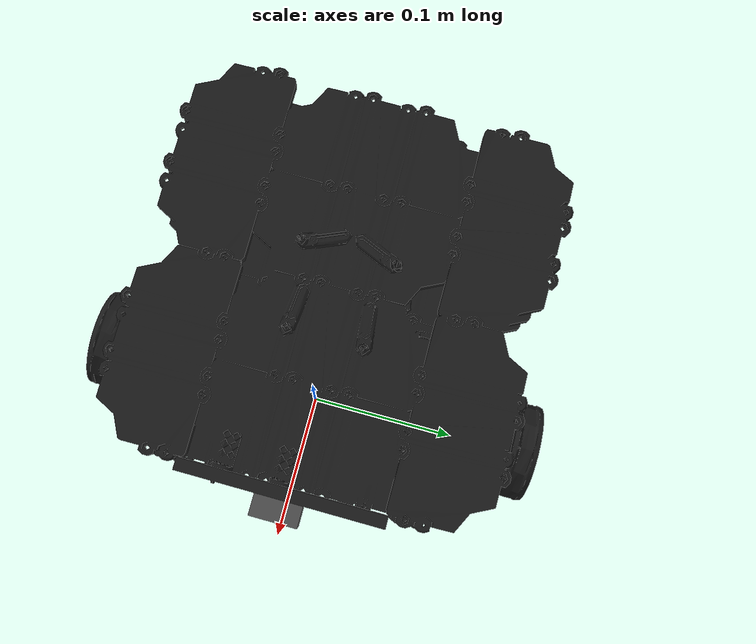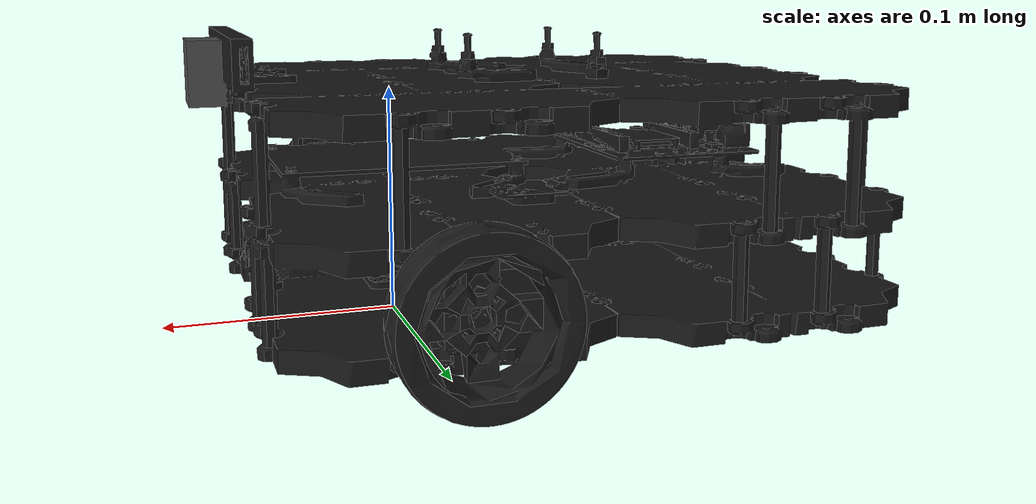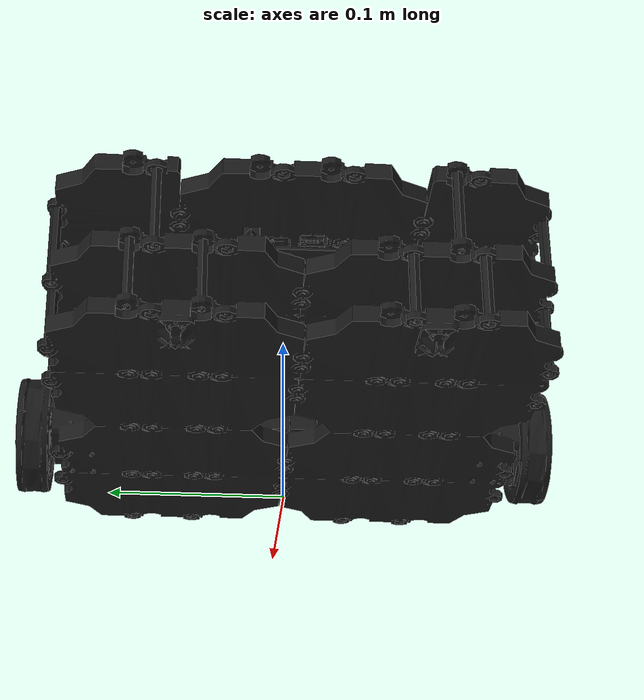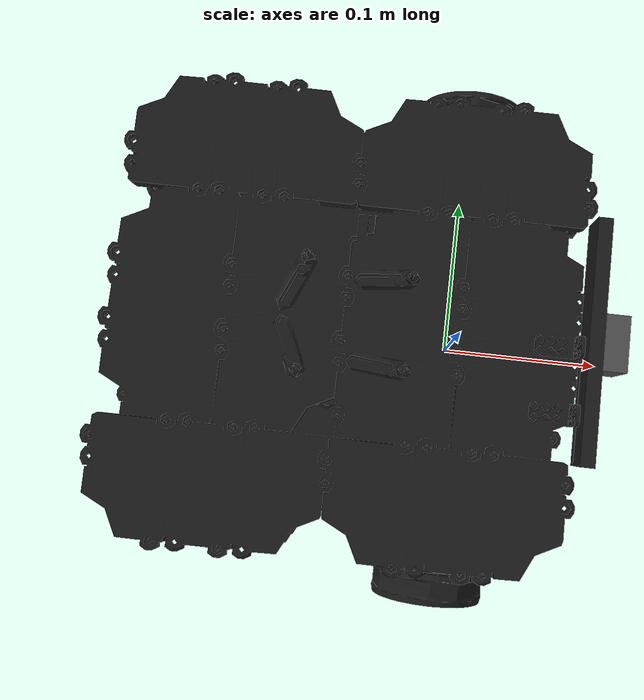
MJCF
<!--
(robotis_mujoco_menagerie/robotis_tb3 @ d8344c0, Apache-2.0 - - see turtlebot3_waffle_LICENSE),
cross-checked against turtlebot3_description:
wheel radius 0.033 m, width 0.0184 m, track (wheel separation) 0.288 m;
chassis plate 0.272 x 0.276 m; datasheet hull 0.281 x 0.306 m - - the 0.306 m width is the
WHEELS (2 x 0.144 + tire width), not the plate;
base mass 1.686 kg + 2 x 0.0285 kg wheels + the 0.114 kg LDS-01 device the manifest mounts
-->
<mujoco model="turtlebot3_waffle">

  <compiler meshdir="meshes"/>

  <asset>
    <material name="tb3_black" rgba="0.1 0.1 0.1 1"/>
    <material name="tb3_grey"  rgba="0.3 0.3 0.3 1"/>

    <mesh name="tb3_waffle_base" file="waffle_base.obj"/>
    <mesh name="tb3_left_tire"   file="left_tire.obj"/>
    <mesh name="tb3_right_tire"  file="right_tire.obj"/>
  </asset>

  <default>
    <default class="tb3_wheel">
      <!-- Contact cylinder at the tire's measured radius/width, axle along the wheel body's +y
           (the hinge axis), which is what the quat rotates the cylinder's local +z onto. -->
      <geom type="cylinder" size="0.033 0.0092" quat="0.707107 0.707107 0 0"
            material="tb3_black" friction="1.5 0.005 0.0001" group="3"/>
    </default>
    <default class="tb3_visual">
      <geom type="mesh" contype="0" conaffinity="0" group="2"/>
    </default>
  </default>

  <worldbody>
    <body name="base_link" pos="0 0 0.012">
      <freejoint name="base_free"/>
      <site name="base_imu" pos="0 0 0.05" size="0.01" rgba="0 0 0 0"/>

      <!-- Spectator camera that follows the robot (constant world-frame offset, level horizon). -->
      <camera name="track" mode="track" pos="-1.0 -1.0 0.8"
              xyaxes="0.7 -0.7 0 0.3 0.3 0.9"/>

      <geom name="tb3_body_collision" type="box" size="0.136 0.138 0.050"
            pos="-0.0616 0 0.055" material="tb3_grey" group="3" friction="0.4 0.005 0.0001"/>
      <inertial pos="-0.064 0 0.0451" mass="1.686" diaginertia="0.01 0.01 0.008"/>

      <!-- Visual meshes at the URDF link transforms relative to base_link. -->
      <geom class="tb3_visual" mesh="tb3_waffle_base" material="tb3_black" pos="-0.064 0 0"/>
      <!-- Front sensor/camera mount (vendor's small box; visual only here). -->
      <geom class="tb3_visual" type="box" size="0.0075 0.015 0.0135" pos="0.078 0 0.097"
            material="tb3_grey"/>

      <!-- The LDS-01 is not part of this model: turtlebot3_waffle.manifest.yaml mounts the `lds01`
           device model at turtlebot3_description's base_link -> base_scan joint. -->

      <body name="left_wheel" pos="0 0.144 0.023">
        <joint name="left_wheel_joint" type="hinge" axis="0 1 0" frictionloss="0.1" armature="0.01"/>
        <inertial pos="0 0 0" mass="0.0285" diaginertia="2.07126e-05 1.11924e-05 1.11756e-05"/>
        <geom name="left_wheel_geom" class="tb3_wheel"/>
        <geom class="tb3_visual" mesh="tb3_left_tire" material="tb3_black"/>
      </body>
      <body name="right_wheel" pos="0 -0.144 0.023">
        <joint name="right_wheel_joint" type="hinge" axis="0 1 0" frictionloss="0.1" armature="0.01"/>
        <inertial pos="0 0 0" mass="0.0285" diaginertia="2.07126e-05 1.11924e-05 1.11756e-05"/>
        <geom name="right_wheel_geom" class="tb3_wheel"/>
        <geom class="tb3_visual" mesh="tb3_right_tire" material="tb3_black"/>
      </body>

      <geom name="tb3_caster_left" type="sphere" size="0.005" pos="-0.177 0.064 -0.005"
            material="tb3_grey" priority="1" condim="1" friction="0.0001 0.0001 0.0001"
            solref="0.02 1" solimp="0.95 0.99 0.001" group="3"/>
      <geom name="tb3_caster_right" type="sphere" size="0.005" pos="-0.177 -0.064 -0.005"
            material="tb3_grey" priority="1" condim="1" friction="0.0001 0.0001 0.0001"
            solref="0.02 1" solimp="0.95 0.99 0.001" group="3"/>
    </body>
  </worldbody>

  <contact>
    <exclude body1="base_link" body2="left_wheel"/>
    <exclude body1="base_link" body2="right_wheel"/>
  </contact>

  <actuator>
    <velocity name="left_wheel_motor"  joint="left_wheel_joint"  kv="6.0" ctrlrange="-7.88 7.88" ctrllimited="true"/>
    <velocity name="right_wheel_motor" joint="right_wheel_joint" kv="6.0" ctrlrange="-7.88 7.88" ctrllimited="true"/>
  </actuator>

  <sensor>
    <!-- Ground-truth base pose/velocity (odom reference + debug) -->
    <framepos      name="base_pos"    objtype="site" objname="base_imu"/>
    <framequat     name="base_quat"   objtype="site" objname="base_imu"/>
    <framelinvel   name="base_linvel" objtype="site" objname="base_imu"/>
    <frameangvel   name="base_angvel" objtype="site" objname="base_imu"/>
    <!-- IMU at the base (the Waffle carries one on the OpenCR board) -->
    <velocimeter   name="imu_vel"  site="base_imu"/>
    <gyro          name="imu_gyro" site="base_imu"/>
    <accelerometer name="imu_acc"  site="base_imu"/>
    <!-- Wheel encoders (encoder-based odometry) -->
    <jointpos name="left_wheel_pos"  joint="left_wheel_joint"/>
    <jointpos name="right_wheel_pos" joint="right_wheel_joint"/>
    <jointvel name="left_wheel_vel"  joint="left_wheel_joint"/>
    <jointvel name="right_wheel_vel" joint="right_wheel_joint"/>
  </sensor>

  <keyframe>
    <!-- Canonical home: base_link at its rest height (0.010 m = wheel radius 0.033 minus the
         0.023 m wheel offset above base_link), wheels zeroed. -->
    <key name="home" qpos="0 0 0.010 1 0 0 0  0 0"/>
  </keyframe>
</mujoco>
